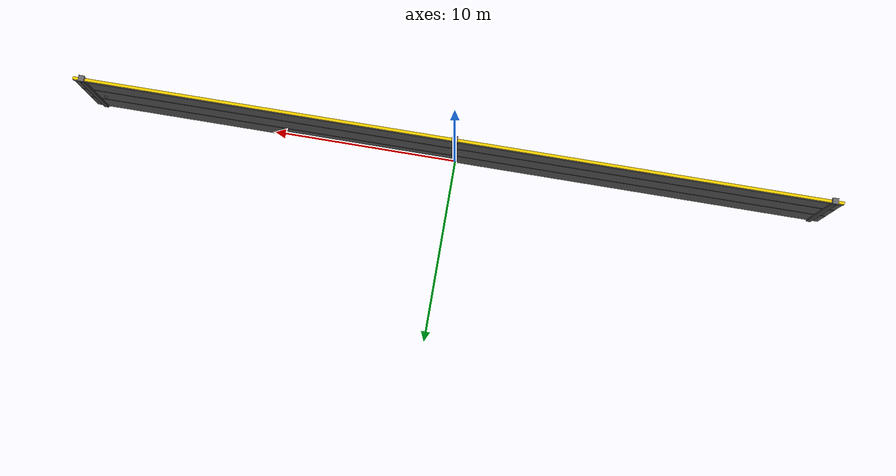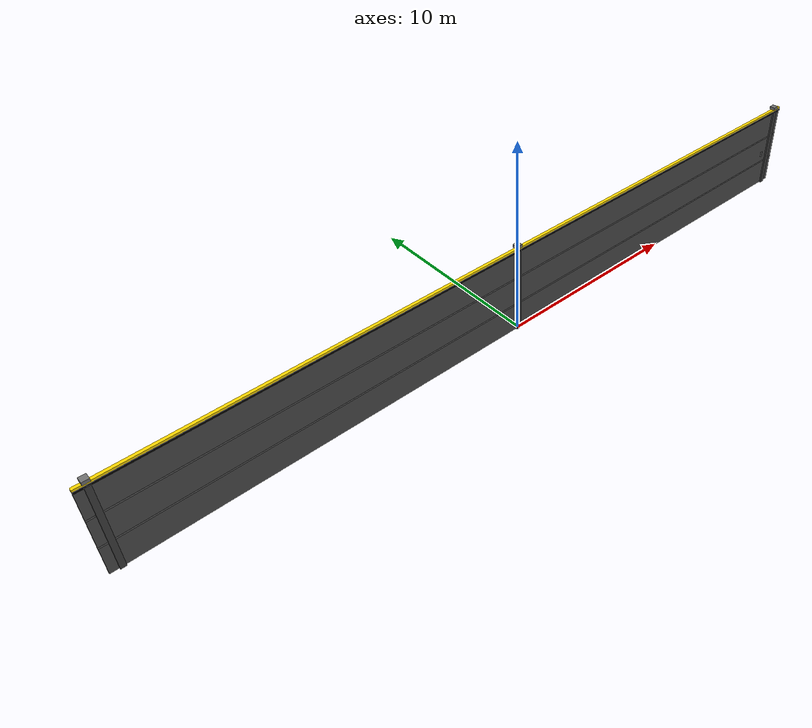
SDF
<?xml version="1.0"?>

<sdf version="1.10">

  <model name="fence">

    <static>true</static>

    <link name="link">

      <!-- MAIN SECURITY FENCE PANEL -->

      <visual name="fence_panel_mesh">
        <pose>0 0 2.25 0 0 0</pose>
        <geometry>
          <box>
            <size>40 0.08 4.5</size>
          </box>
        </geometry>
        <material>
          <ambient>0.2 0.2 0.2 1</ambient>
          <diffuse>0.3 0.3 0.3 1</diffuse>
          <specular>0.15 0.15 0.15 1</specular>
        </material>
      </visual>

      <!-- Fence grid pattern (visual effect) -->
      <visual name="fence_horizontal_grid_1">
        <pose>0 0 1.5 0 0 0</pose>
        <geometry>
          <box>
            <size>40 0.1 0.08</size>
          </box>
        </geometry>
        <material>
          <ambient>0.25 0.25 0.25 1</ambient>
          <diffuse>0.35 0.35 0.35 1</diffuse>
        </material>
      </visual>

      <visual name="fence_horizontal_grid_2">
        <pose>0 0 3.0 0 0 0</pose>
        <geometry>
          <box>
            <size>40 0.1 0.08</size>
          </box>
        </geometry>
        <material>
          <ambient>0.25 0.25 0.25 1</ambient>
          <diffuse>0.35 0.35 0.35 1</diffuse>
        </material>
      </visual>

      <!-- TOP SAFETY STRIPE -->

      <visual name="warning_strip_yellow">
        <pose>0 0 4.55 0 0 0</pose>
        <geometry>
          <box>
            <size>40 0.15 0.2</size>
          </box>
        </geometry>
        <material>
          <ambient>1 0.85 0 1</ambient>
          <diffuse>1 0.85 0 1</diffuse>
        </material>
      </visual>

      <visual name="warning_strip_text">
        <pose>0 0 4.5 0 0 0</pose>
        <geometry>
          <box>
            <size>40 0.18 0.1</size>
          </box>
        </geometry>
        <material>
          <ambient>0 0 0 1</ambient>
          <diffuse>0 0 0 1</diffuse>
        </material>
      </visual>

      <!-- REINFORCED CORNER POSTS -->

      <visual name="post_left">
        <pose>-19.5 0 2.25 0 0 0</pose>
        <geometry>
          <box>
            <size>0.25 0.25 4.5</size>
          </box>
        </geometry>
        <material>
          <ambient>0.15 0.15 0.15 1</ambient>
          <diffuse>0.25 0.25 0.25 1</diffuse>
        </material>
      </visual>

      <!-- Post top cap -->
      <visual name="post_left_cap">
        <pose>-19.5 0 4.75 0 0 0</pose>
        <geometry>
          <box>
            <size>0.3 0.3 0.15</size>
          </box>
        </geometry>
        <material>
          <ambient>0.35 0.35 0.35 1</ambient>
          <diffuse>0.45 0.45 0.45 1</diffuse>
        </material>
      </visual>

      <visual name="post_center">
        <pose>0 0 2.25 0 0 0</pose>
        <geometry>
          <box>
            <size>0.25 0.25 4.5</size>
          </box>
        </geometry>
        <material>
          <ambient>0.15 0.15 0.15 1</ambient>
          <diffuse>0.25 0.25 0.25 1</diffuse>
        </material>
      </visual>

      <visual name="post_center_cap">
        <pose>0 0 4.75 0 0 0</pose>
        <geometry>
          <box>
            <size>0.3 0.3 0.15</size>
          </box>
        </geometry>
        <material>
          <ambient>0.35 0.35 0.35 1</ambient>
          <diffuse>0.45 0.45 0.45 1</diffuse>
        </material>
      </visual>

      <visual name="post_right">
        <pose>19.5 0 2.25 0 0 0</pose>
        <geometry>
          <box>
            <size>0.25 0.25 4.5</size>
          </box>
        </geometry>
        <material>
          <ambient>0.15 0.15 0.15 1</ambient>
          <diffuse>0.25 0.25 0.25 1</diffuse>
        </material>
      </visual>

      <visual name="post_right_cap">
        <pose>19.5 0 4.75 0 0 0</pose>
        <geometry>
          <box>
            <size>0.3 0.3 0.15</size>
          </box>
        </geometry>
        <material>
          <ambient>0.35 0.35 0.35 1</ambient>
          <diffuse>0.45 0.45 0.45 1</diffuse>
        </material>
      </visual>

      <!-- GATE HINGE AREA -->
      <visual name="gate_hinge">
        <pose>19 0 2.0 0 0 0</pose>
        <geometry>
          <cylinder>
            <radius>0.08</radius>
            <length>0.3</length>
          </cylinder>
        </geometry>
        <material>
          <ambient>0.3 0.3 0.3 1</ambient>
          <diffuse>0.4 0.4 0.4 1</diffuse>
        </material>
      </visual>

      <!-- COLLISION -->

    </link>
  </model>
</sdf>
